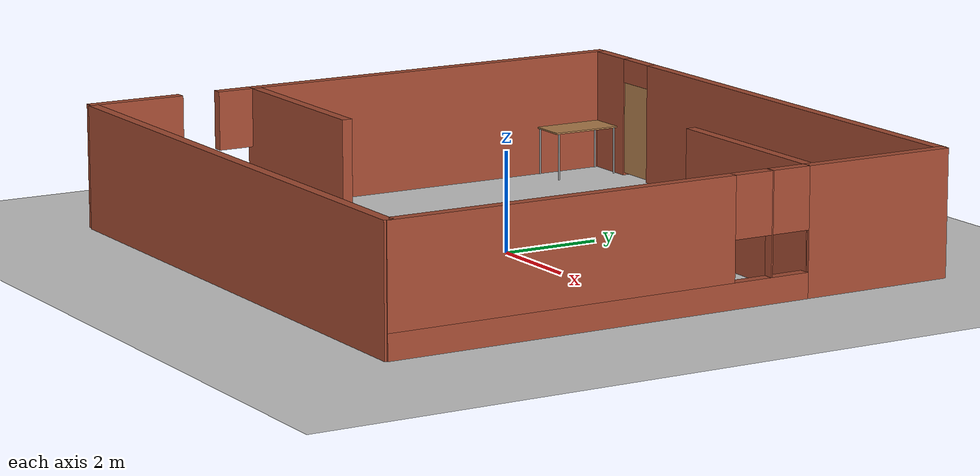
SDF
<sdf version="1.7">
 <world name="default">
  <light name="sun" type="directional">
   <pose>0 0 10 0 -0 0</pose>
   <diffuse>0.8 0.8 0.8 1</diffuse>
   <specular>0.2 0.2 0.2 1</specular>
   <attenuation>
    <range>1000</range>
    <constant>0.9</constant>
    <linear>0.01</linear>
    <quadratic>0.001</quadratic>
   </attenuation>
   <direction>-0.5 0.1 -0.9</direction>
   <spot><inner_angle>0</inner_angle><outer_angle>0</outer_angle><falloff>0</falloff></spot>
  </light>
  <model name="ground_plane">
   <static>1</static>
   <link name="link">
    <collision name="collision">
     <geometry><plane><normal>0 0 1</normal><size>100 100</size></plane></geometry>
     <surface><friction><ode><mu>100</mu><mu2>50</mu2></ode></friction></surface>
    </collision>
    <visual name="visual">
     <cast_shadows>0</cast_shadows>
     <geometry><plane><normal>0 0 1</normal><size>100 100</size></plane></geometry>
     <material>
      <script><uri>file://media/materials/scripts/gazebo.material</uri><name>Gazebo/Grey</name></script>
     </material>
    </visual>
   </link>
  </model>
  <gravity>0 0 -9.8</gravity>
  <magnetic_field>6e-06 2.3e-05 -4.2e-05</magnetic_field>
  <atmosphere type="adiabatic"/>
  <physics type="ode">
   <max_step_size>0.001</max_step_size>
   <real_time_factor>1</real_time_factor>
   <real_time_update_rate>1000</real_time_update_rate>
  </physics>
  <scene><ambient>0.4 0.4 0.4 1</ambient><background>0.7 0.7 0.7 1</background><shadows>1</shadows></scene>
  <audio><device>default</device></audio>
  <spherical_coordinates>
   <surface_model>EARTH_WGS84</surface_model>
   <latitude_deg>0</latitude_deg>
   <longitude_deg>0</longitude_deg>
   <elevation>0</elevation>
   <heading_deg>0</heading_deg>
  </spherical_coordinates>
  <model name="warehouse_BharatForge">
   <pose>-0.059306 -0.00334 0 0 -0 0</pose>
   <link name="Wall_1">
    <collision name="Wall_1_Collision">
     <geometry><box><size>12 0.21 2.5</size></box></geometry>
     <pose>0 0 1.25 0 -0 0</pose>
    </collision>
    <visual name="Wall_1_Visual">
     <pose>0 0 1.25 0 -0 0</pose>
     <geometry><box><size>12 0.21 2.5</size></box></geometry>
     <material>
      <script><uri>file://media/materials/scripts/gazebo.material</uri><name>Gazebo/Bricks</name></script>
      <ambient>1 1 1 1</ambient>
     </material>
     <meta><layer>0</layer></meta>
    </visual>
    <pose>0.070189 -5.93244 0 0 -0 0</pose>
   </link>
   <link name="Wall_12">
    <collision name="Wall_12_Collision">
     <geometry><box><size>4 0.21 2.5</size></box></geometry>
     <pose>0 0 1.25 0 -0 0</pose>
    </collision>
    <visual name="Wall_12_Visual">
     <pose>0 0 1.25 0 -0 0</pose>
     <geometry><box><size>4 0.21 2.5</size></box></geometry>
     <material>
      <script><uri>file://media/materials/scripts/gazebo.material</uri><name>Gazebo/Bricks</name></script>
      <ambient>1 1 1 1</ambient>
     </material>
     <meta><layer>0</layer></meta>
    </visual>
    <pose>-4.07069 -2.32692 0 0 -0 0</pose>
   </link>
   <link name="Wall_3">
    <pose>0.025285 5.91936 0 0 -0 0</pose>
    <visual name="Wall_3_Visual_0">
     <pose>-5.44014 0 1.25 0 -0 0</pose>
     <geometry><box><size>1.11972 0.21 2.5</size></box></geometry>
     <material>
      <script><uri>file://media/materials/scripts/gazebo.material</uri><name>Gazebo/Bricks</name></script>
      <ambient>1 1 1 1</ambient>
     </material>
     <meta><layer>0</layer></meta>
    </visual>
    <collision name="Wall_3_Collision_0">
     <geometry><box><size>1.11972 0.21 2.5</size></box></geometry>
     <pose>-5.44014 0 1.25 0 -0 0</pose>
    </collision>
    <visual name="Wall_3_Visual_1">
     <pose>1.00986 0 1.25 0 -0 0</pose>
     <geometry><box><size>9.98028 0.21 2.5</size></box></geometry>
     <material>
      <script><uri>file://media/materials/scripts/gazebo.material</uri><name>Gazebo/Bricks</name></script>
      <ambient>1 1 1 1</ambient>
     </material>
     <meta><layer>0</layer></meta>
    </visual>
    <collision name="Wall_3_Collision_1">
     <geometry><box><size>9.98028 0.21 2.5</size></box></geometry>
     <pose>1.00986 0 1.25 0 -0 0</pose>
    </collision>
    <visual name="Wall_3_Visual_2">
     <pose>-4.43028 0 2.25 0 -0 0</pose>
     <geometry><box><size>0.9 0.21 0.5</size></box></geometry>
     <material>
      <script><uri>file://media/materials/scripts/gazebo.material</uri><name>Gazebo/Bricks</name></script>
      <ambient>1 1 1 1</ambient>
     </material>
     <meta><layer>0</layer></meta>
    </visual>
    <collision name="Wall_3_Collision_2">
     <geometry><box><size>0.9 0.21 0.5</size></box></geometry>
     <pose>-4.43028 0 2.25 0 -0 0</pose>
    </collision>
   </link>
   <link name="Wall_5">
    <pose>-5.99568 0.007442 0 0 -0 -1.5708</pose>
    <visual name="Wall_5_Visual_0">
     <pose>-1.7881 0 1.25 0 -0 0</pose>
     <geometry><box><size>8.4238 0.21 2.5</size></box></geometry>
     <material>
      <script><uri>file://media/materials/scripts/gazebo.material</uri><name>Gazebo/Bricks</name></script>
      <ambient>1 1 1 1</ambient>
     </material>
     <meta><layer>0</layer></meta>
    </visual>
    <collision name="Wall_5_Collision_0">
     <geometry><box><size>8.4238 0.21 2.5</size></box></geometry>
     <pose>-1.7881 0 1.25 0 -0 0</pose>
    </collision>
    <visual name="Wall_5_Visual_1">
     <pose>4.2119 0 0.25 0 -0 0</pose>
     <geometry><box><size>3.57619 0.21 0.5</size></box></geometry>
     <material>
      <script><uri>file://media/materials/scripts/gazebo.material</uri><name>Gazebo/Bricks</name></script>
      <ambient>1 1 1 1</ambient>
     </material>
     <meta><layer>0</layer></meta>
    </visual>
    <collision name="Wall_5_Collision_1">
     <geometry><box><size>3.57619 0.21 0.5</size></box></geometry>
     <pose>4.2119 0 0.25 0 -0 0</pose>
    </collision>
    <visual name="Wall_5_Visual_2">
     <pose>4.99428 0 1.5 0 -0 0</pose>
     <geometry><box><size>2.01144 0.21 2</size></box></geometry>
     <material>
      <script><uri>file://media/materials/scripts/gazebo.material</uri><name>Gazebo/Bricks</name></script>
      <ambient>1 1 1 1</ambient>
     </material>
     <meta><layer>0</layer></meta>
    </visual>
    <collision name="Wall_5_Collision_2">
     <geometry><box><size>2.01144 0.21 2</size></box></geometry>
     <pose>4.99428 0 1.5 0 -0 0</pose>
    </collision>
    <visual name="Wall_5_Visual_3">
     <pose>2.80618 0 1.9 0 -0 0</pose>
     <geometry><box><size>0.764756 0.21 1.2</size></box></geometry>
     <material>
      <script><uri>file://media/materials/scripts/gazebo.material</uri><name>Gazebo/Bricks</name></script>
      <ambient>1 1 1 1</ambient>
     </material>
     <meta><layer>0</layer></meta>
    </visual>
    <collision name="Wall_5_Collision_3">
     <geometry><box><size>0.764756 0.21 1.2</size></box></geometry>
     <pose>2.80618 0 1.9 0 -0 0</pose>
    </collision>
   </link>
   <link name="Wall_7">
    <pose>5.99568 0.007442 0 0 -0 -1.5708</pose>
    <visual name="Wall_7_Visual_0">
     <pose>-4.41886 0 1.25 0 -0 0</pose>
     <geometry><box><size>3.16229 0.21 2.5</size></box></geometry>
     <material>
      <script><uri>file://media/materials/scripts/gazebo.material</uri><name>Gazebo/Bricks</name></script>
      <ambient>1 1 1 1</ambient>
     </material>
     <meta><layer>0</layer></meta>
    </visual>
    <collision name="Wall_7_Collision_0">
     <geometry><box><size>3.16229 0.21 2.5</size></box></geometry>
     <pose>-4.41886 0 1.25 0 -0 0</pose>
    </collision>
    <visual name="Wall_7_Visual_1">
     <pose>1.58114 0 0.25 0 -0 0</pose>
     <geometry><box><size>8.83771 0.21 0.5</size></box></geometry>
     <material>
      <script><uri>file://media/materials/scripts/gazebo.material</uri><name>Gazebo/Bricks</name></script>
      <ambient>1 1 1 1</ambient>
     </material>
     <meta><layer>0</layer></meta>
    </visual>
    <collision name="Wall_7_Collision_1">
     <geometry><box><size>8.83771 0.21 0.5</size></box></geometry>
     <pose>1.58114 0 0.25 0 -0 0</pose>
    </collision>
    <visual name="Wall_7_Visual_2">
     <pose>-2.02475 0 1.5 0 -0 0</pose>
     <geometry><box><size>0.025936 0.21 2</size></box></geometry>
     <material>
      <script><uri>file://media/materials/scripts/gazebo.material</uri><name>Gazebo/Bricks</name></script>
      <ambient>1 1 1 1</ambient>
     </material>
     <meta><layer>0</layer></meta>
    </visual>
    <collision name="Wall_7_Collision_2">
     <geometry><box><size>0.025936 0.21 2</size></box></geometry>
     <pose>-2.02475 0 1.5 0 -0 0</pose>
    </collision>
    <visual name="Wall_7_Visual_3">
     <pose>2.39411 0 1.5 0 -0 0</pose>
     <geometry><box><size>7.21178 0.21 2</size></box></geometry>
     <material>
      <script><uri>file://media/materials/scripts/gazebo.material</uri><name>Gazebo/Bricks</name></script>
      <ambient>1 1 1 1</ambient>
     </material>
     <meta><layer>0</layer></meta>
    </visual>
    <collision name="Wall_7_Collision_3">
     <geometry><box><size>7.21178 0.21 2</size></box></geometry>
     <pose>2.39411 0 1.5 0 -0 0</pose>
    </collision>
    <visual name="Wall_7_Visual_4">
     <pose>-2.43771 0 1.9 0 -0 0</pose>
     <geometry><box><size>0.8 0.21 1.2</size></box></geometry>
     <material>
      <script><uri>file://media/materials/scripts/gazebo.material</uri><name>Gazebo/Bricks</name></script>
      <ambient>1 1 1 1</ambient>
     </material>
     <meta><layer>0</layer></meta>
    </visual>
    <collision name="Wall_7_Collision_4">
     <geometry><box><size>0.8 0.21 1.2</size></box></geometry>
     <pose>-2.43771 0 1.9 0 -0 0</pose>
    </collision>
    <visual name="Wall_7_Visual_5">
     <pose>-1.61178 0 1.9 0 -0 0</pose>
     <geometry><box><size>0.8 0.21 1.2</size></box></geometry>
     <material>
      <script><uri>file://media/materials/scripts/gazebo.material</uri><name>Gazebo/Bricks</name></script>
      <ambient>1 1 1 1</ambient>
     </material>
     <meta><layer>0</layer></meta>
    </visual>
    <collision name="Wall_7_Collision_5">
     <geometry><box><size>0.8 0.21 1.2</size></box></geometry>
     <pose>-1.61178 0 1.9 0 -0 0</pose>
    </collision>
   </link>
   <link name="Wall_9">
    <collision name="Wall_9_Collision">
     <geometry><box><size>4 0.21 2.5</size></box></geometry>
     <pose>0 0 1.25 0 -0 0</pose>
    </collision>
    <visual name="Wall_9_Visual">
     <pose>0 0 1.25 0 -0 0</pose>
     <geometry><box><size>4 0.21 2.5</size></box></geometry>
     <material>
      <script><uri>file://media/materials/scripts/gazebo.material</uri><name>Gazebo/Bricks</name></script>
      <ambient>1 1 1 1</ambient>
     </material>
     <meta><layer>0</layer></meta>
    </visual>
    <pose>4.03573 2.9346 0 0 -0 0</pose>
   </link>
   <static>1</static>
  </model>
  <model name="table">
   <static>1</static>
   <link name="link">
    <collision name="surface_collision">
     <pose>0 0 1 0 -0 0</pose>
     <geometry><box><size>1.5 0.8 0.03</size></box></geometry>
     <surface><friction><ode><mu>0.6</mu><mu2>0.6</mu2></ode></friction></surface>
    </collision>
    <visual name="surface_visual">
     <pose>0 0 1 0 -0 0</pose>
     <geometry><box><size>1.5 0.8 0.03</size></box></geometry>
     <material>
      <script><uri>file://media/materials/scripts/gazebo.material</uri><name>Gazebo/Wood</name></script>
     </material>
    </visual>
    <collision name="front_left_leg_collision">
     <pose>0.68 0.38 0.5 0 -0 0</pose>
     <geometry><cylinder><radius>0.02</radius><length>1</length></cylinder></geometry>
    </collision>
    <visual name="front_left_leg_visual">
     <pose>0.68 0.38 0.5 0 -0 0</pose>
     <geometry><cylinder><radius>0.02</radius><length>1</length></cylinder></geometry>
     <material>
      <script><uri>file://media/materials/scripts/gazebo.material</uri><name>Gazebo/Grey</name></script>
     </material>
    </visual>
    <collision name="front_right_leg_collision">
     <pose>0.68 -0.38 0.5 0 -0 0</pose>
     <geometry><cylinder><radius>0.02</radius><length>1</length></cylinder></geometry>
    </collision>
    <visual name="front_right_leg_visual">
     <pose>0.68 -0.38 0.5 0 -0 0</pose>
     <geometry><cylinder><radius>0.02</radius><length>1</length></cylinder></geometry>
     <material>
      <script><uri>file://media/materials/scripts/gazebo.material</uri><name>Gazebo/Grey</name></script>
     </material>
    </visual>
    <collision name="back_left_leg_collision">
     <pose>-0.68 0.38 0.5 0 -0 0</pose>
     <geometry><cylinder><radius>0.02</radius><length>1</length></cylinder></geometry>
    </collision>
    <visual name="back_left_leg_visual">
     <pose>-0.68 0.38 0.5 0 -0 0</pose>
     <geometry><cylinder><radius>0.02</radius><length>1</length></cylinder></geometry>
     <material>
      <script><uri>file://media/materials/scripts/gazebo.material</uri><name>Gazebo/Grey</name></script>
     </material>
    </visual>
    <collision name="back_right_leg_collision">
     <pose>-0.68 -0.38 0.5 0 -0 0</pose>
     <geometry><cylinder><radius>0.02</radius><length>1</length></cylinder></geometry>
    </collision>
    <visual name="back_right_leg_visual">
     <pose>-0.68 -0.38 0.5 0 -0 0</pose>
     <geometry><cylinder><radius>0.02</radius><length>1</length></cylinder></geometry>
     <material>
      <script><uri>file://media/materials/scripts/gazebo.material</uri><name>Gazebo/Grey</name></script>
     </material>
    </visual>
   </link>
   <pose>-5.56239 5.06533 0 0 0 -1.57665</pose>
  </model>
  <model name="abcdd">
   <pose>-2.48443 3.00916 0 0 -0 0</pose>
   <link name="Wall_0">
    <collision name="Wall_0_Collision">
     <geometry><box><size>1 0.21 2.5</size></box></geometry>
     <pose>0 0 1.25 0 -0 0</pose>
    </collision>
    <visual name="Wall_0_Visual">
     <pose>0 0 1.25 0 -0 0</pose>
     <geometry><box><size>1 0.21 2.4</size></box></geometry>
     <material>
      <script><uri>file://media/materials/scripts/gazebo.material</uri><name>Gazebo/Wood</name></script>
      <ambient>1 1 1 1</ambient>
     </material>
     <meta><layer>0</layer></meta>
    </visual>
    <pose>-1.98443 2.93416 0 0 -0 0</pose>
   </link>
   <static>1</static>
  </model>
 </world>
</sdf>
